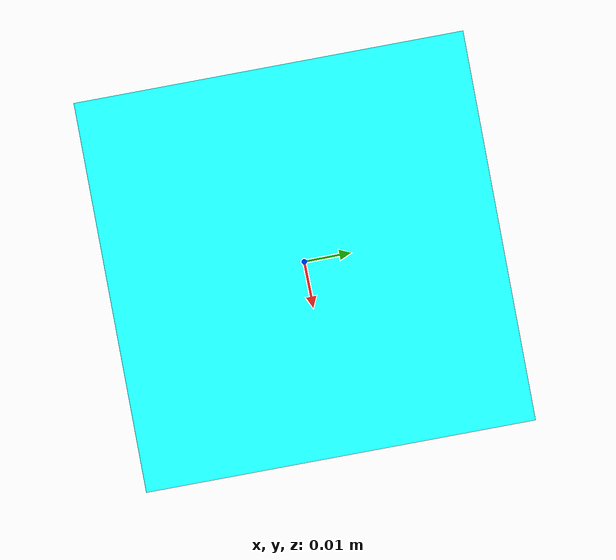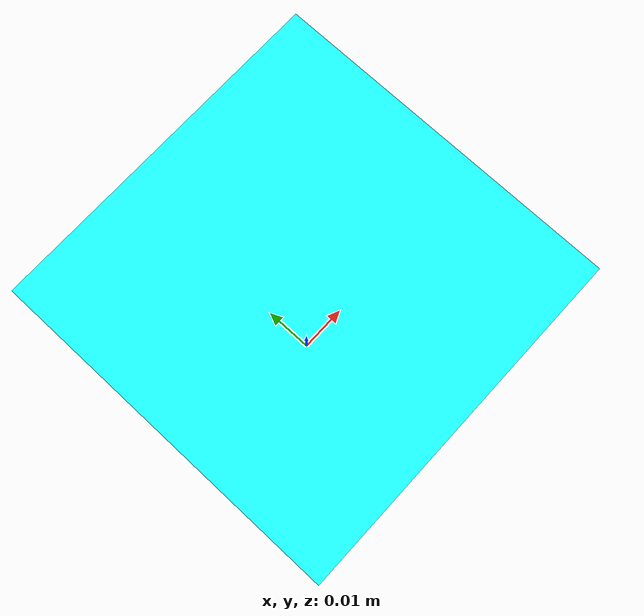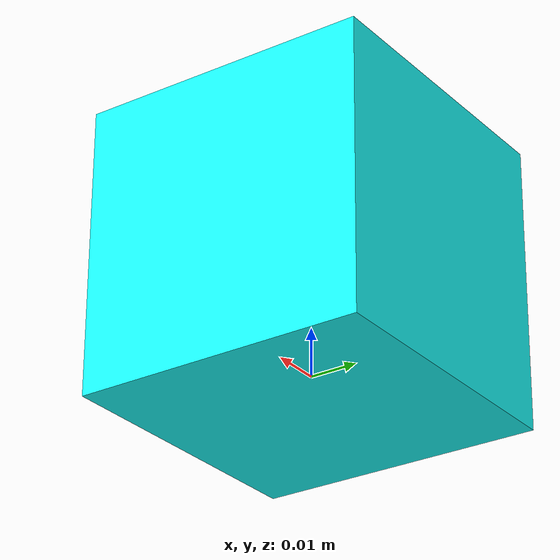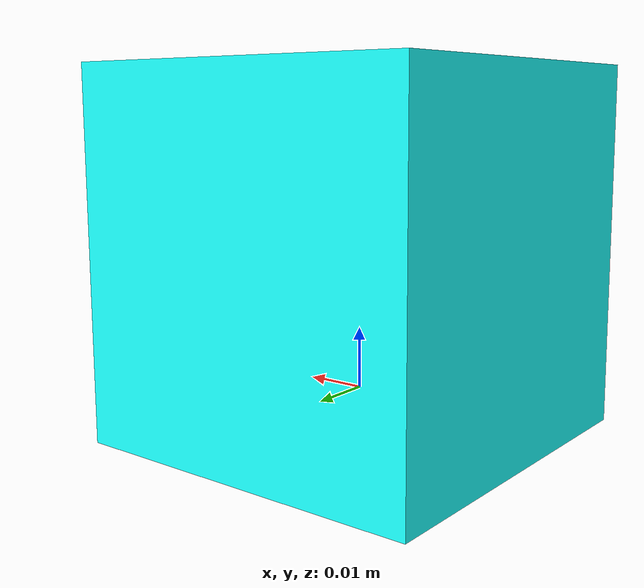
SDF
<sdf version="1.7">
  <model name="cyan_cube">
    <link name="base_link">
      <inertial>
        <mass>0.05</mass>
        <inertia>
          <ixx>1.6875e-05</ixx>
          <ixy>0</ixy>
          <ixz>0</ixz>
          <iyy>1.6875e-05</iyy>
          <iyz>0</iyz>
          <izz>1.6875e-05</izz>
        </inertia>
        <pose>0 0 0 0 0 0</pose>
      </inertial>
      <pose>0 0 0 0 0 0</pose>
      <visual name="visual">
        <pose>0 0 0.0225 0 0 0</pose>
        <geometry>
            <box>
                <size>0.06 0.06 0.06</size>
            </box>
        </geometry>
        <material>
          <diffuse>0.1 1 0.992 1</diffuse>
        </material>
      </visual>
      <collision name="collision">
        <pose>0 0 0.0225 0 0 0</pose>
        <geometry>
            <box>
              <size>0.06 0.06 0.06</size>
            </box>
        </geometry>
      </collision>
    </link>
  </model>
</sdf>
